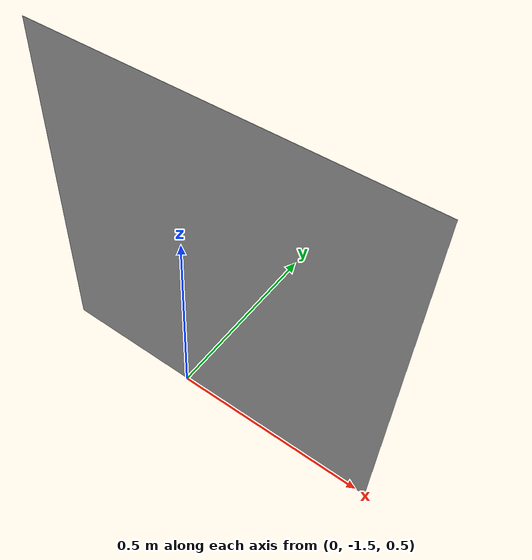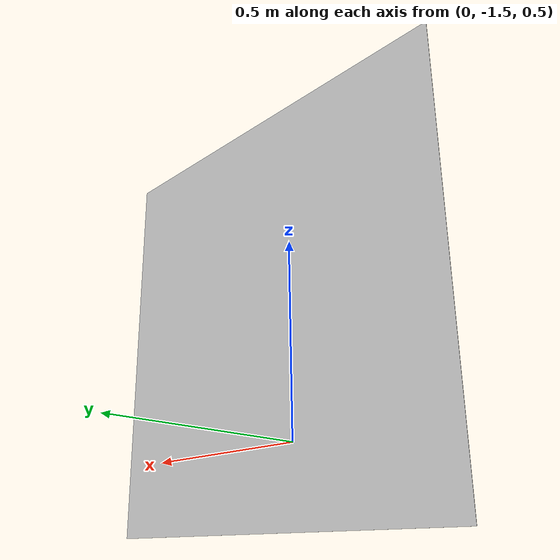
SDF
<?xml version='1.0'?>
<sdf version="1.4">
  <model name="poster">
    <pose>0 -1.4 .8 0 0 0</pose>
    <static>true</static>
    <link name="link">
      <inertial>
        <mass>1.0</mass>
        <inertia> <!-- inertias are tricky to compute -->
          <!-- http://gazebosim.org/tutorials?tut=inertia&cat=build_robot -->
          <ixx>0.083</ixx>       <!-- for a box: ixx = 0.083 * mass * (y*y + z*z) -->
          <ixy>0.0</ixy>         <!-- for a box: ixy = 0 -->
          <ixz>0.0</ixz>         <!-- for a box: ixz = 0 -->
          <iyy>0.083</iyy>       <!-- for a box: iyy = 0.083 * mass * (x*x + z*z) -->
          <iyz>0.0</iyz>         <!-- for a box: iyz = 0 -->
          <izz>0.083</izz>       <!-- for a box: izz = 0.083 * mass * (x*x + y*y) -->
        </inertia>
      </inertial>
      <collision name="collision">
        <geometry>
          <box>
            <size>1 .001 1</size>
          </box>
        </geometry>
      </collision>
      <visual name="visual">
        <geometry>
          <box>
            <size>1 .001 1</size>
          </box>
        </geometry>
        <material>
          <script>
            <uri>model://poster/materials/scripts</uri>
            <uri>model://poster/materials/textures</uri>
            <name>vrc/poster</name>
          </script>
        </material>
      </visual>
    </link>
  </model>
</sdf>
